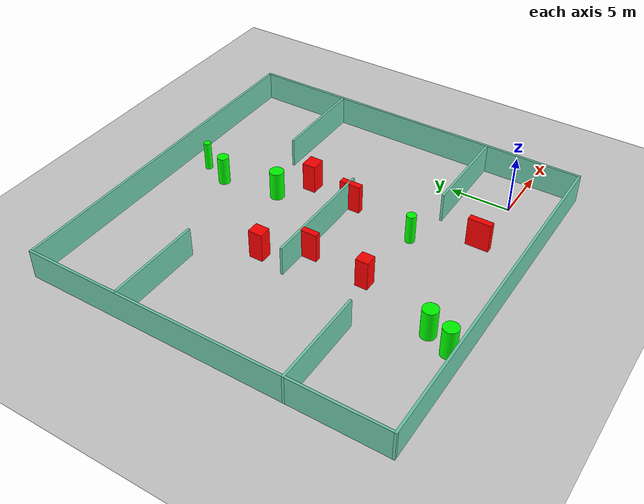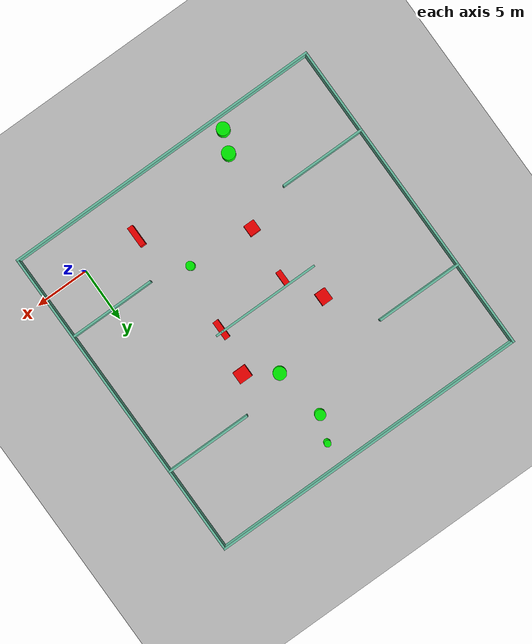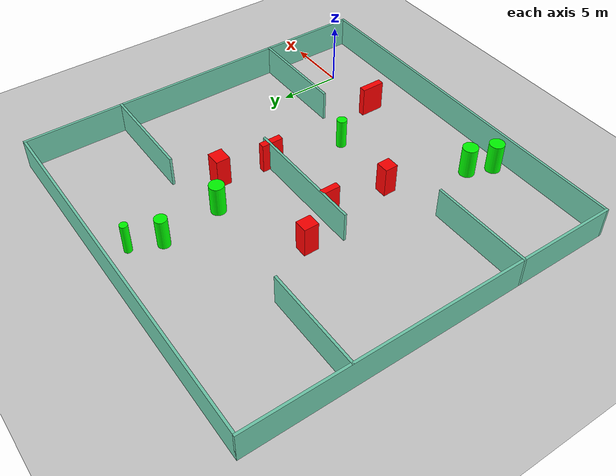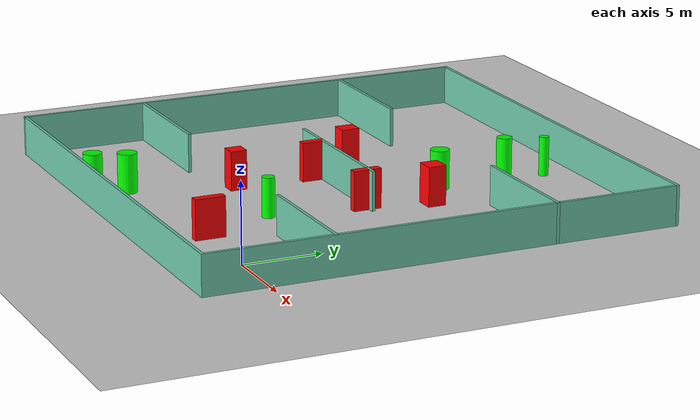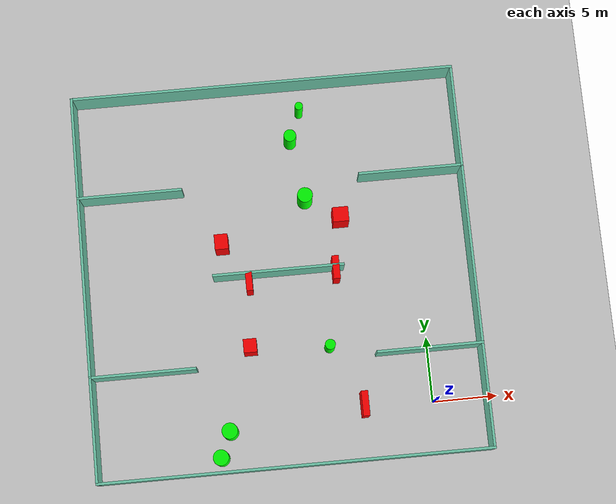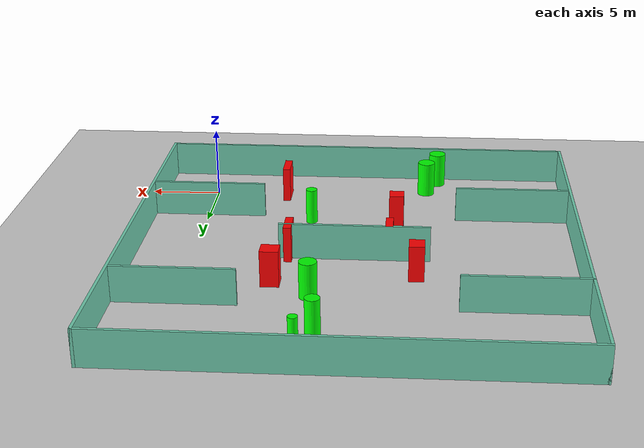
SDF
<sdf version="1.7">
 <world name="default">
  <light name="sun" type="directional">
   <pose>0 0 10 0 -0 0</pose>
   <diffuse>0.8 0.8 0.8 1</diffuse>
   <specular>0.2 0.2 0.2 1</specular>
   <attenuation>
    <range>1000</range>
    <constant>0.9</constant>
    <linear>0.01</linear>
    <quadratic>0.001</quadratic>
   </attenuation>
   <direction>-0.5 0.1 -0.9</direction>
   <spot><inner_angle>0</inner_angle><outer_angle>0</outer_angle><falloff>0</falloff></spot>
  </light>
  <model name="ground_plane">
   <static>1</static>
   <link name="link">
    <collision name="collision">
     <geometry><plane><normal>0 0 1</normal><size>100 100</size></plane></geometry>
     <surface>
      <contact><collide_bitmask>65535</collide_bitmask></contact>
      <friction><ode><mu>100</mu><mu2>50</mu2></ode></friction>
     </surface>
    </collision>
    <visual name="visual">
     <cast_shadows>0</cast_shadows>
     <geometry><plane><normal>0 0 1</normal><size>100 100</size></plane></geometry>
     <material>
      <script><uri>file://media/materials/scripts/gazebo.material</uri><name>Gazebo/Grey</name></script>
     </material>
    </visual>
   </link>
  </model>
  <gravity>0 0 -9.8</gravity>
  <magnetic_field>6e-06 2.3e-05 -4.2e-05</magnetic_field>
  <atmosphere type="adiabatic"/>
  <physics type="ode">
   <max_step_size>0.001</max_step_size>
   <real_time_factor>1</real_time_factor>
   <real_time_update_rate>1000</real_time_update_rate>
  </physics>
  <scene><ambient>0.4 0.4 0.4 1</ambient><background>0.7 0.7 0.7 1</background><shadows>1</shadows></scene>
  <spherical_coordinates>
   <surface_model>EARTH_WGS84</surface_model>
   <latitude_deg>0</latitude_deg>
   <longitude_deg>0</longitude_deg>
   <elevation>0</elevation>
   <heading_deg>0</heading_deg>
  </spherical_coordinates>
  <model name="my_base_walls">
   <link name="Wall_10">
    <collision name="Wall_10_Collision">
     <geometry><box><size>8.2 0.2 2.5</size></box></geometry>
     <pose>0 0 1.25 0 -0 0</pose>
    </collision>
    <visual name="Wall_10_Visual">
     <pose>0 0 1.25 0 -0 0</pose>
     <geometry><box><size>8.2 0.2 2.5</size></box></geometry>
     <material>
      <script><uri>file://media/materials/scripts/gazebo.material</uri><name>Gazebo/Grey</name></script>
      <ambient>0.435294 0.796078 0.67451 1</ambient>
     </material>
     <meta><layer>0</layer></meta>
    </visual>
    <pose>-11 -7 0 0 -0 0</pose>
   </link>
   <link name="Wall_12">
    <collision name="Wall_12_Collision">
     <geometry><box><size>8.2 0.2 2.5</size></box></geometry>
     <pose>0 0 1.25 0 -0 0</pose>
    </collision>
    <visual name="Wall_12_Visual">
     <pose>0 0 1.25 0 -0 0</pose>
     <geometry><box><size>8.2 0.2 2.5</size></box></geometry>
     <material>
      <script><uri>file://media/materials/scripts/gazebo.material</uri><name>Gazebo/Grey</name></script>
      <ambient>0.435294 0.796078 0.67451 1</ambient>
     </material>
     <meta><layer>0</layer></meta>
    </visual>
    <pose>-11 7 0 0 -0 0</pose>
   </link>
   <link name="Wall_14">
    <collision name="Wall_14_Collision">
     <geometry><box><size>8.2 0.2 2.5</size></box></geometry>
     <pose>0 0 1.25 0 -0 0</pose>
    </collision>
    <visual name="Wall_14_Visual">
     <pose>0 0 1.25 0 -0 0</pose>
     <geometry><box><size>8.2 0.2 2.5</size></box></geometry>
     <material>
      <script><uri>file://media/materials/scripts/gazebo.material</uri><name>Gazebo/Grey</name></script>
      <ambient>0.435294 0.796078 0.67451 1</ambient>
     </material>
     <meta><layer>0</layer></meta>
    </visual>
    <pose>11 7 0 0 -0 3.14159</pose>
   </link>
   <link name="Wall_16">
    <collision name="Wall_16_Collision">
     <geometry><box><size>10.2 0.2 2.5</size></box></geometry>
     <pose>0 0 1.25 0 -0 0</pose>
    </collision>
    <visual name="Wall_16_Visual">
     <pose>0 0 1.25 0 -0 0</pose>
     <geometry><box><size>10.2 0.2 2.5</size></box></geometry>
     <material>
      <script><uri>file://media/materials/scripts/gazebo.material</uri><name>Gazebo/Grey</name></script>
      <ambient>0.435294 0.796078 0.67451 1</ambient>
     </material>
     <meta><layer>0</layer></meta>
    </visual>
    <pose>0 0 0 0 -0 3.14159</pose>
   </link>
   <link name="Wall_2">
    <collision name="Wall_2_Collision">
     <geometry><box><size>30.2 0.2 2.5</size></box></geometry>
     <pose>0 0 1.25 0 -0 0</pose>
    </collision>
    <visual name="Wall_2_Visual">
     <pose>0 0 1.25 0 -0 0</pose>
     <geometry><box><size>30.2 0.2 2.5</size></box></geometry>
     <material>
      <script><uri>file://media/materials/scripts/gazebo.material</uri><name>Gazebo/Grey</name></script>
      <ambient>0.435294 0.796078 0.67451 1</ambient>
     </material>
     <meta><layer>0</layer></meta>
    </visual>
    <pose>0 -15 0 0 -0 3.14159</pose>
   </link>
   <link name="Wall_3">
    <collision name="Wall_3_Collision">
     <geometry><box><size>30.2 0.2 2.5</size></box></geometry>
     <pose>0 0 1.25 0 -0 0</pose>
    </collision>
    <visual name="Wall_3_Visual">
     <pose>0 0 1.25 0 -0 0</pose>
     <geometry><box><size>30.2 0.2 2.5</size></box></geometry>
     <material>
      <script><uri>file://media/materials/scripts/gazebo.material</uri><name>Gazebo/Grey</name></script>
      <ambient>0.435294 0.796078 0.67451 1</ambient>
     </material>
     <meta><layer>0</layer></meta>
    </visual>
    <pose>-15 0 0 0 -0 1.5708</pose>
   </link>
   <link name="Wall_4">
    <collision name="Wall_4_Collision">
     <geometry><box><size>30.2 0.2 2.5</size></box></geometry>
     <pose>0 0 1.25 0 -0 0</pose>
    </collision>
    <visual name="Wall_4_Visual">
     <pose>0 0 1.25 0 -0 0</pose>
     <geometry><box><size>30.2 0.2 2.5</size></box></geometry>
     <material>
      <script><uri>file://media/materials/scripts/gazebo.material</uri><name>Gazebo/Grey</name></script>
      <ambient>0.435294 0.796078 0.67451 1</ambient>
     </material>
     <meta><layer>0</layer></meta>
    </visual>
    <pose>0 15 0 0 -0 0</pose>
   </link>
   <link name="Wall_6">
    <collision name="Wall_6_Collision">
     <geometry><box><size>30.2 0.2 2.5</size></box></geometry>
     <pose>0 0 1.25 0 -0 0</pose>
    </collision>
    <visual name="Wall_6_Visual">
     <pose>0 0 1.25 0 -0 0</pose>
     <geometry><box><size>30.2 0.2 2.5</size></box></geometry>
     <material>
      <script><uri>file://media/materials/scripts/gazebo.material</uri><name>Gazebo/Grey</name></script>
      <ambient>0.435294 0.796078 0.67451 1</ambient>
     </material>
     <meta><layer>0</layer></meta>
    </visual>
    <pose>15 0 0 0 -0 1.5708</pose>
   </link>
   <link name="Wall_8">
    <collision name="Wall_8_Collision">
     <geometry><box><size>8.2 0.2 2.5</size></box></geometry>
     <pose>0 0 1.25 0 -0 0</pose>
    </collision>
    <visual name="Wall_8_Visual">
     <pose>0 0 1.25 0 -0 0</pose>
     <geometry><box><size>8.2 0.2 2.5</size></box></geometry>
     <material>
      <script><uri>file://media/materials/scripts/gazebo.material</uri><name>Gazebo/Grey</name></script>
      <ambient>0.435294 0.796078 0.67451 1</ambient>
     </material>
     <meta><layer>0</layer></meta>
    </visual>
    <pose>11 -7 0 0 -0 3.14159</pose>
   </link>
   <static>1</static>
   <pose>-11 11 0 0 -0 0</pose>
  </model>
  <model name="cylinder1">
   <static>1</static>
   <link name="link">
    <inertial>
     <mass>1</mass>
     <inertia><ixx>0.5</ixx><ixy>0</ixy><ixz>0</ixz><iyy>0.5</iyy><iyz>0</iyz><izz>1</izz></inertia>
    </inertial>
    <collision name="collision">
     <geometry><cylinder><radius>0.4838564774140397</radius><length>2.5</length></cylinder></geometry>
    </collision>
    <visual name="visual">
     <geometry><cylinder><radius>0.4838564774140397</radius><length>2.5</length></cylinder></geometry>
     <material>
      <ambient>0 1 0 1</ambient>
      <diffuse>0 1 0 1</diffuse>
      <specular>0.1 0.1 0.1 1</specular>
      <emissive>0 0 0 0</emissive>
     </material>
    </visual>
   </link>
   <pose>-9.146213720602601 21.53180253251938 1.25 0 0 0</pose>
  </model>
  <model name="cylinder2">
   <static>1</static>
   <link name="link">
    <inertial>
     <mass>1</mass>
     <inertia><ixx>0.5</ixx><ixy>0</ixy><ixz>0</ixz><iyy>0.5</iyy><iyz>0</iyz><izz>1</izz></inertia>
    </inertial>
    <collision name="collision">
     <geometry><cylinder><radius>0.6032338486118005</radius><length>2.5</length></cylinder></geometry>
    </collision>
    <visual name="visual">
     <geometry><cylinder><radius>0.6032338486118005</radius><length>2.5</length></cylinder></geometry>
     <material>
      <ambient>0 1 0 1</ambient>
      <diffuse>0 1 0 1</diffuse>
      <specular>0.1 0.1 0.1 1</specular>
      <emissive>0 0 0 0</emissive>
     </material>
    </visual>
   </link>
   <pose>-16.583530292086156 -2.8886911707134155 1.25 0 0 0</pose>
  </model>
  <model name="cylinder3">
   <static>1</static>
   <link name="link">
    <inertial>
     <mass>1</mass>
     <inertia><ixx>0.5</ixx><ixy>0</ixy><ixz>0</ixz><iyy>0.5</iyy><iyz>0</iyz><izz>1</izz></inertia>
    </inertial>
    <collision name="collision">
     <geometry><cylinder><radius>0.5944103019077859</radius><length>2.5</length></cylinder></geometry>
    </collision>
    <visual name="visual">
     <geometry><cylinder><radius>0.5944103019077859</radius><length>2.5</length></cylinder></geometry>
     <material>
      <ambient>0 1 0 1</ambient>
      <diffuse>0 1 0 1</diffuse>
      <specular>0.1 0.1 0.1 1</specular>
      <emissive>0 0 0 0</emissive>
     </material>
    </visual>
   </link>
   <pose>-8.415653685677668 16.68395133924235 1.25 0 0 0</pose>
  </model>
  <model name="cylinder4">
   <static>1</static>
   <link name="link">
    <inertial>
     <mass>1</mass>
     <inertia><ixx>0.5</ixx><ixy>0</ixy><ixz>0</ixz><iyy>0.5</iyy><iyz>0</iyz><izz>1</izz></inertia>
    </inertial>
    <collision name="collision">
     <geometry><cylinder><radius>0.6137155598314774</radius><length>2.5</length></cylinder></geometry>
    </collision>
    <visual name="visual">
     <geometry><cylinder><radius>0.6137155598314774</radius><length>2.5</length></cylinder></geometry>
     <material>
      <ambient>0 1 0 1</ambient>
      <diffuse>0 1 0 1</diffuse>
      <specular>0.1 0.1 0.1 1</specular>
      <emissive>0 0 0 0</emissive>
     </material>
    </visual>
   </link>
   <pose>-15.760951410617455 -0.9548683356564971 1.25 0 0 0</pose>
  </model>
  <model name="cylinder5">
   <static>1</static>
   <link name="link">
    <inertial>
     <mass>1</mass>
     <inertia><ixx>0.5</ixx><ixy>0</ixy><ixz>0</ixz><iyy>0.5</iyy><iyz>0</iyz><izz>1</izz></inertia>
    </inertial>
    <collision name="collision">
     <geometry><cylinder><radius>0.40026080812661047</radius><length>2.5</length></cylinder></geometry>
    </collision>
    <visual name="visual">
     <geometry><cylinder><radius>0.40026080812661047</radius><length>2.5</length></cylinder></geometry>
     <material>
      <ambient>0 1 0 1</ambient>
      <diffuse>0 1 0 1</diffuse>
      <specular>0.1 0.1 0.1 1</specular>
      <emissive>0 0 0 0</emissive>
     </material>
    </visual>
   </link>
   <pose>-7.57527990272785 4.887721858860907 1.25 0 0 0</pose>
  </model>
  <model name="cylinder6">
   <static>1</static>
   <link name="link">
    <inertial>
     <mass>1</mass>
     <inertia><ixx>0.5</ixx><ixy>0</ixy><ixz>0</ixz><iyy>0.5</iyy><iyz>0</iyz><izz>1</izz></inertia>
    </inertial>
    <collision name="collision">
     <geometry><cylinder><radius>0.30948897190035773</radius><length>2.5</length></cylinder></geometry>
    </collision>
    <visual name="visual">
     <geometry><cylinder><radius>0.30948897190035773</radius><length>2.5</length></cylinder></geometry>
     <material>
      <ambient>0 1 0 1</ambient>
      <diffuse>0 1 0 1</diffuse>
      <specular>0.1 0.1 0.1 1</specular>
      <emissive>0 0 0 0</emissive>
     </material>
    </visual>
   </link>
   <pose>-8.234780991584271 23.854705146936222 1.25 0 0 0</pose>
  </model>
  <model name="box1">
   <static>1</static>
   <link name="link">
    <inertial>
     <mass>1</mass>
     <inertia><ixx>0.083</ixx><ixy>0</ixy><ixz>0</ixz><iyy>0.083</iyy><iyz>0</iyz><izz>0.083</izz></inertia>
    </inertial>
    <collision name="collision">
     <geometry><box><size>1.0166144377603548 1.0554009208962816 2.5</size></box></geometry>
    </collision>
    <visual name="visual">
     <geometry><box><size>1.0166144377603548 1.0554009208962816 2.5</size></box></geometry>
     <material>
      <ambient>1 0 0 1</ambient>
      <diffuse>1 0 0 1</diffuse>
      <specular>0.1 0.1 0.1 1</specular>
      <emissive>0 0 0 0</emissive>
     </material>
    </visual>
    <sensor name="my_contact" type="contact">
     <contact><collision>box_collision</collision><topic>__default_topic__</topic></contact>
    </sensor>
   </link>
   <pose>-13.68586570178276 5.350785887885355 1.25 0 0 0</pose>
  </model>
  <model name="box2">
   <static>1</static>
   <link name="link">
    <inertial>
     <mass>1</mass>
     <inertia><ixx>0.083</ixx><ixy>0</ixy><ixz>0</ixz><iyy>0.083</iyy><iyz>0</iyz><izz>0.083</izz></inertia>
    </inertial>
    <collision name="collision">
     <geometry><box><size>0.5244675426357175 1.9134056504033246 2.5</size></box></geometry>
    </collision>
    <visual name="visual">
     <geometry><box><size>0.5244675426357175 1.9134056504033246 2.5</size></box></geometry>
     <material>
      <ambient>1 0 0 1</ambient>
      <diffuse>1 0 0 1</diffuse>
      <specular>0.1 0.1 0.1 1</specular>
      <emissive>0 0 0 0</emissive>
     </material>
    </visual>
    <sensor name="my_contact" type="contact">
     <contact><collision>box_collision</collision><topic>__default_topic__</topic></contact>
    </sensor>
   </link>
   <pose>-5.354782062709283 0.19072579249171184 1.25 0 0 0</pose>
  </model>
  <model name="box3">
   <static>1</static>
   <link name="link">
    <inertial>
     <mass>1</mass>
     <inertia><ixx>0.083</ixx><ixy>0</ixy><ixz>0</ixz><iyy>0.083</iyy><iyz>0</iyz><izz>0.083</izz></inertia>
    </inertial>
    <collision name="collision">
     <geometry><box><size>1.2309174751645977 1.1452047699752188 2.5</size></box></geometry>
    </collision>
    <visual name="visual">
     <geometry><box><size>1.2309174751645977 1.1452047699752188 2.5</size></box></geometry>
     <material>
      <ambient>1 0 0 1</ambient>
      <diffuse>1 0 0 1</diffuse>
      <specular>0.1 0.1 0.1 1</specular>
      <emissive>0 0 0 0</emissive>
     </material>
    </visual>
    <sensor name="my_contact" type="contact">
     <contact><collision>box_collision</collision><topic>__default_topic__</topic></contact>
    </sensor>
   </link>
   <pose>-5.8059612454929805 14.91480678027423 1.25 0 0 0</pose>
  </model>
  <model name="box4">
   <static>1</static>
   <link name="link">
    <inertial>
     <mass>1</mass>
     <inertia><ixx>0.083</ixx><ixy>0</ixy><ixz>0</ixz><iyy>0.083</iyy><iyz>0</iyz><izz>0.083</izz></inertia>
    </inertial>
    <collision name="collision">
     <geometry><box><size>0.5259646425054125 1.7985010677142124 2.5</size></box></geometry>
    </collision>
    <visual name="visual">
     <geometry><box><size>0.5259646425054125 1.7985010677142124 2.5</size></box></geometry>
     <material>
      <ambient>1 0 0 1</ambient>
      <diffuse>1 0 0 1</diffuse>
      <specular>0.1 0.1 0.1 1</specular>
      <emissive>0 0 0 0</emissive>
     </material>
    </visual>
    <sensor name="my_contact" type="contact">
     <contact><collision>box_collision</collision><topic>__default_topic__</topic></contact>
    </sensor>
   </link>
   <pose>-6.556383854382748 10.81119965469677 1.25 0 0 0</pose>
  </model>
  <model name="box5">
   <static>1</static>
   <link name="link">
    <inertial>
     <mass>1</mass>
     <inertia><ixx>0.083</ixx><ixy>0</ixy><ixz>0</ixz><iyy>0.083</iyy><iyz>0</iyz><izz>0.083</izz></inertia>
    </inertial>
    <collision name="collision">
     <geometry><box><size>0.5040155631285692 1.4804542179591158 2.5</size></box></geometry>
    </collision>
    <visual name="visual">
     <geometry><box><size>0.5040155631285692 1.4804542179591158 2.5</size></box></geometry>
     <material>
      <ambient>1 0 0 1</ambient>
      <diffuse>1 0 0 1</diffuse>
      <specular>0.1 0.1 0.1 1</specular>
      <emissive>0 0 0 0</emissive>
     </material>
    </visual>
    <sensor name="my_contact" type="contact">
     <contact><collision>box_collision</collision><topic>__default_topic__</topic></contact>
    </sensor>
   </link>
   <pose>-13.331447148081594 10.32776874453734 1.25 0 0 0</pose>
  </model>
  <model name="box6">
   <static>1</static>
   <link name="link">
    <inertial>
     <mass>1</mass>
     <inertia><ixx>0.083</ixx><ixy>0</ixy><ixz>0</ixz><iyy>0.083</iyy><iyz>0</iyz><izz>0.083</izz></inertia>
    </inertial>
    <collision name="collision">
     <geometry><box><size>1.0359351045431675 1.187833795689241 2.5</size></box></geometry>
    </collision>
    <visual name="visual">
     <geometry><box><size>1.0359351045431675 1.187833795689241 2.5</size></box></geometry>
     <material>
      <ambient>1 0 0 1</ambient>
      <diffuse>1 0 0 1</diffuse>
      <specular>0.1 0.1 0.1 1</specular>
      <emissive>0 0 0 0</emissive>
     </material>
    </visual>
    <sensor name="my_contact" type="contact">
     <contact><collision>box_collision</collision><topic>__default_topic__</topic></contact>
    </sensor>
   </link>
   <pose>-15.2121638357525 13.587728188580542 1.25 0 0 0</pose>
  </model>
 </world>
</sdf>
